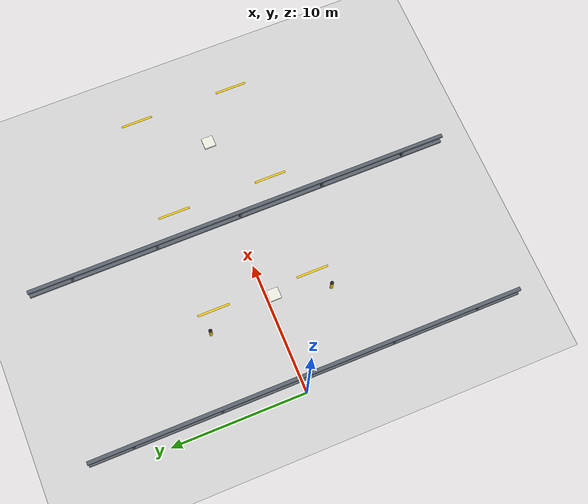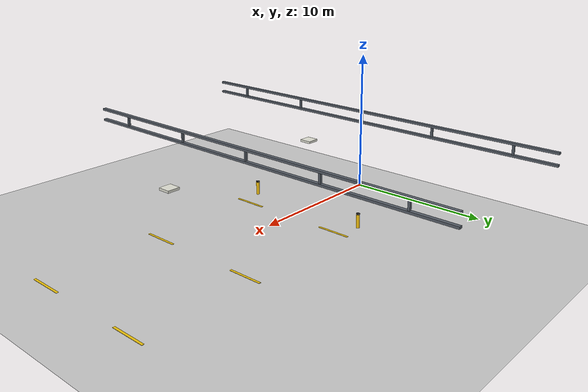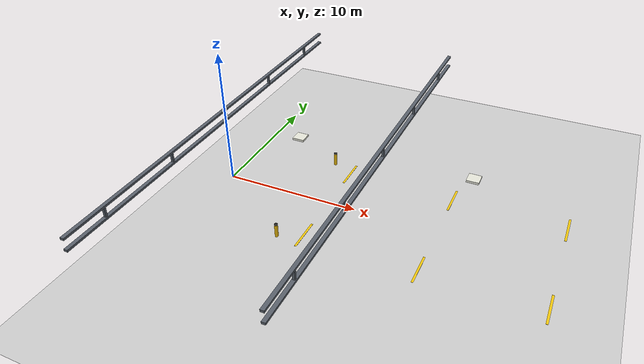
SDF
<sdf version="1.6">
 <world name="warehouse">
  <include><uri>model://sun</uri></include>
  <include><uri>model://ground_plane</uri></include>
  <model name="staging_line_L_8">
   <static>true</static>
   <pose>8 3.8 0.012 0 0 0</pose>
   <link name="link">
    <visual name="v">
     <geometry><box><size>0.15 2.4 0.02</size></box></geometry>
     <material>
      <ambient>0.95 0.78 0.05 1.0</ambient>
      <diffuse>0.95 0.78 0.05 1.0</diffuse>
      <specular>0.2 0.2 0.2 1</specular>
     </material>
    </visual>
   </link>
  </model>
  <model name="staging_line_R_8">
   <static>true</static>
   <pose>8 -3.8 0.012 0 0 0</pose>
   <link name="link">
    <visual name="v">
     <geometry><box><size>0.15 2.4 0.02</size></box></geometry>
     <material>
      <ambient>0.95 0.78 0.05 1.0</ambient>
      <diffuse>0.95 0.78 0.05 1.0</diffuse>
      <specular>0.2 0.2 0.2 1</specular>
     </material>
    </visual>
   </link>
  </model>
  <model name="staging_line_L_16">
   <static>true</static>
   <pose>16 3.8 0.012 0 0 0</pose>
   <link name="link">
    <visual name="v">
     <geometry><box><size>0.15 2.4 0.02</size></box></geometry>
     <material>
      <ambient>0.95 0.78 0.05 1.0</ambient>
      <diffuse>0.95 0.78 0.05 1.0</diffuse>
      <specular>0.2 0.2 0.2 1</specular>
     </material>
    </visual>
   </link>
  </model>
  <model name="staging_line_R_16">
   <static>true</static>
   <pose>16 -3.8 0.012 0 0 0</pose>
   <link name="link">
    <visual name="v">
     <geometry><box><size>0.15 2.4 0.02</size></box></geometry>
     <material>
      <ambient>0.95 0.78 0.05 1.0</ambient>
      <diffuse>0.95 0.78 0.05 1.0</diffuse>
      <specular>0.2 0.2 0.2 1</specular>
     </material>
    </visual>
   </link>
  </model>
  <model name="staging_line_L_24">
   <static>true</static>
   <pose>24 3.8 0.012 0 0 0</pose>
   <link name="link">
    <visual name="v">
     <geometry><box><size>0.15 2.4 0.02</size></box></geometry>
     <material>
      <ambient>0.95 0.78 0.05 1.0</ambient>
      <diffuse>0.95 0.78 0.05 1.0</diffuse>
      <specular>0.2 0.2 0.2 1</specular>
     </material>
    </visual>
   </link>
  </model>
  <model name="staging_line_R_24">
   <static>true</static>
   <pose>24 -3.8 0.012 0 0 0</pose>
   <link name="link">
    <visual name="v">
     <geometry><box><size>0.15 2.4 0.02</size></box></geometry>
     <material>
      <ambient>0.95 0.78 0.05 1.0</ambient>
      <diffuse>0.95 0.78 0.05 1.0</diffuse>
      <specular>0.2 0.2 0.2 1</specular>
     </material>
    </visual>
   </link>
  </model>
  <model name="truss_0">
   <static>true</static>
   <pose>0 0 5.4 0 0 0</pose>
   <link name="link">
    <visual name="top_chord">
     <pose>0 0 0.4 0 0 0</pose>
     <geometry><box><size>0.25 30.0 0.15</size></box></geometry>
     <material>
      <ambient>0.35 0.38 0.42 1.0</ambient>
      <diffuse>0.35 0.38 0.42 1.0</diffuse>
      <specular>0.5 0.5 0.5 1</specular>
     </material>
    </visual>
    <visual name="bottom_chord">
     <pose>0 0 -0.4 0 0 0</pose>
     <geometry><box><size>0.25 30.0 0.15</size></box></geometry>
     <material>
      <ambient>0.35 0.38 0.42 1.0</ambient>
      <diffuse>0.35 0.38 0.42 1.0</diffuse>
      <specular>0.5 0.5 0.5 1</specular>
     </material>
    </visual>
    <visual name="strut_c">
     <geometry><box><size>0.15 0.15 0.8</size></box></geometry>
     <material>
      <ambient>0.35 0.38 0.42 1.0</ambient>
      <diffuse>0.35 0.38 0.42 1.0</diffuse>
      <specular>0.5 0.5 0.5 1</specular>
     </material>
    </visual>
    <visual name="strut_l1">
     <pose>0 6.0 0 0 0 0</pose>
     <geometry><box><size>0.15 0.15 0.8</size></box></geometry>
     <material>
      <ambient>0.35 0.38 0.42 1.0</ambient>
      <diffuse>0.35 0.38 0.42 1.0</diffuse>
      <specular>0.5 0.5 0.5 1</specular>
     </material>
    </visual>
    <visual name="strut_r1">
     <pose>0 -6.0 0 0 0 0</pose>
     <geometry><box><size>0.15 0.15 0.8</size></box></geometry>
     <material>
      <ambient>0.35 0.38 0.42 1.0</ambient>
      <diffuse>0.35 0.38 0.42 1.0</diffuse>
      <specular>0.5 0.5 0.5 1</specular>
     </material>
    </visual>
    <visual name="strut_l2">
     <pose>0 12.0 0 0 0 0</pose>
     <geometry><box><size>0.15 0.15 0.8</size></box></geometry>
     <material>
      <ambient>0.35 0.38 0.42 1.0</ambient>
      <diffuse>0.35 0.38 0.42 1.0</diffuse>
      <specular>0.5 0.5 0.5 1</specular>
     </material>
    </visual>
    <visual name="strut_r2">
     <pose>0 -12.0 0 0 0 0</pose>
     <geometry><box><size>0.15 0.15 0.8</size></box></geometry>
     <material>
      <ambient>0.35 0.38 0.42 1.0</ambient>
      <diffuse>0.35 0.38 0.42 1.0</diffuse>
      <specular>0.5 0.5 0.5 1</specular>
     </material>
    </visual>
   </link>
  </model>
  <model name="truss_12">
   <static>true</static>
   <pose>12 0 5.4 0 0 0</pose>
   <link name="link">
    <visual name="top_chord">
     <pose>0 0 0.4 0 0 0</pose>
     <geometry><box><size>0.25 30.0 0.15</size></box></geometry>
     <material>
      <ambient>0.35 0.38 0.42 1.0</ambient>
      <diffuse>0.35 0.38 0.42 1.0</diffuse>
      <specular>0.5 0.5 0.5 1</specular>
     </material>
    </visual>
    <visual name="bottom_chord">
     <pose>0 0 -0.4 0 0 0</pose>
     <geometry><box><size>0.25 30.0 0.15</size></box></geometry>
     <material>
      <ambient>0.35 0.38 0.42 1.0</ambient>
      <diffuse>0.35 0.38 0.42 1.0</diffuse>
      <specular>0.5 0.5 0.5 1</specular>
     </material>
    </visual>
    <visual name="strut_c">
     <geometry><box><size>0.15 0.15 0.8</size></box></geometry>
     <material>
      <ambient>0.35 0.38 0.42 1.0</ambient>
      <diffuse>0.35 0.38 0.42 1.0</diffuse>
      <specular>0.5 0.5 0.5 1</specular>
     </material>
    </visual>
    <visual name="strut_l1">
     <pose>0 6.0 0 0 0 0</pose>
     <geometry><box><size>0.15 0.15 0.8</size></box></geometry>
     <material>
      <ambient>0.35 0.38 0.42 1.0</ambient>
      <diffuse>0.35 0.38 0.42 1.0</diffuse>
      <specular>0.5 0.5 0.5 1</specular>
     </material>
    </visual>
    <visual name="strut_r1">
     <pose>0 -6.0 0 0 0 0</pose>
     <geometry><box><size>0.15 0.15 0.8</size></box></geometry>
     <material>
      <ambient>0.35 0.38 0.42 1.0</ambient>
      <diffuse>0.35 0.38 0.42 1.0</diffuse>
      <specular>0.5 0.5 0.5 1</specular>
     </material>
    </visual>
    <visual name="strut_l2">
     <pose>0 12.0 0 0 0 0</pose>
     <geometry><box><size>0.15 0.15 0.8</size></box></geometry>
     <material>
      <ambient>0.35 0.38 0.42 1.0</ambient>
      <diffuse>0.35 0.38 0.42 1.0</diffuse>
      <specular>0.5 0.5 0.5 1</specular>
     </material>
    </visual>
    <visual name="strut_r2">
     <pose>0 -12.0 0 0 0 0</pose>
     <geometry><box><size>0.15 0.15 0.8</size></box></geometry>
     <material>
      <ambient>0.35 0.38 0.42 1.0</ambient>
      <diffuse>0.35 0.38 0.42 1.0</diffuse>
      <specular>0.5 0.5 0.5 1</specular>
     </material>
    </visual>
   </link>
  </model>
  <model name="ufo_light_6">
   <static>true</static>
   <pose>6 0 5.0 0 0 0</pose>
   <link name="link">
    <visual name="v">
     <geometry><box><size>0.8 0.8 0.15</size></box></geometry>
     <material>
      <ambient>0.9 0.9 0.85 1.0</ambient>
      <diffuse>0.9 0.9 0.85 1.0</diffuse>
      <specular>0.8 0.8 0.8 1</specular>
     </material>
    </visual>
   </link>
  </model>
  <model name="ufo_light_18">
   <static>true</static>
   <pose>18 0 5.0 0 0 0</pose>
   <link name="link">
    <visual name="v">
     <geometry><box><size>0.8 0.8 0.15</size></box></geometry>
     <material>
      <ambient>0.9 0.9 0.85 1.0</ambient>
      <diffuse>0.9 0.9 0.85 1.0</diffuse>
      <specular>0.8 0.8 0.8 1</specular>
     </material>
    </visual>
   </link>
  </model>
  <model name="bollard_L_4">
   <static>true</static>
   <pose>6.4 4.6 0 0 0 0</pose>
   <link name="link">
    <collision name="c">
     <pose>0 0 0.5 0 0 0</pose>
     <geometry><cylinder><radius>0.12</radius><length>1.0</length></cylinder></geometry>
    </collision>
    <visual name="post">
     <pose>0 0 0.48 0 0 0</pose>
     <geometry><cylinder><radius>0.12</radius><length>0.96</length></cylinder></geometry>
     <material>
      <ambient>0.95 0.75 0.05 1.0</ambient>
      <diffuse>0.95 0.75 0.05 1.0</diffuse>
      <specular>0.4 0.4 0.4 1</specular>
     </material>
    </visual>
    <visual name="cap">
     <pose>0 0 0.98 0 0 0</pose>
     <geometry><cylinder><radius>0.125</radius><length>0.06</length></cylinder></geometry>
     <material>
      <ambient>0.12 0.12 0.12 1.0</ambient>
      <diffuse>0.12 0.12 0.12 1.0</diffuse>
      <specular>0.2 0.2 0.2 1</specular>
     </material>
    </visual>
   </link>
  </model>
  <model name="bollard_R_4">
   <static>true</static>
   <pose>6.4 -4.6 0 0 0 0</pose>
   <link name="link">
    <collision name="c">
     <pose>0 0 0.5 0 0 0</pose>
     <geometry><cylinder><radius>0.12</radius><length>1.0</length></cylinder></geometry>
    </collision>
    <visual name="post">
     <pose>0 0 0.48 0 0 0</pose>
     <geometry><cylinder><radius>0.12</radius><length>0.96</length></cylinder></geometry>
     <material>
      <ambient>0.95 0.75 0.05 1.0</ambient>
      <diffuse>0.95 0.75 0.05 1.0</diffuse>
      <specular>0.4 0.4 0.4 1</specular>
     </material>
    </visual>
    <visual name="cap">
     <pose>0 0 0.98 0 0 0</pose>
     <geometry><cylinder><radius>0.125</radius><length>0.06</length></cylinder></geometry>
     <material>
      <ambient>0.12 0.12 0.12 1.0</ambient>
      <diffuse>0.12 0.12 0.12 1.0</diffuse>
      <specular>0.2 0.2 0.2 1</specular>
     </material>
    </visual>
   </link>
  </model>
 </world>
</sdf>
